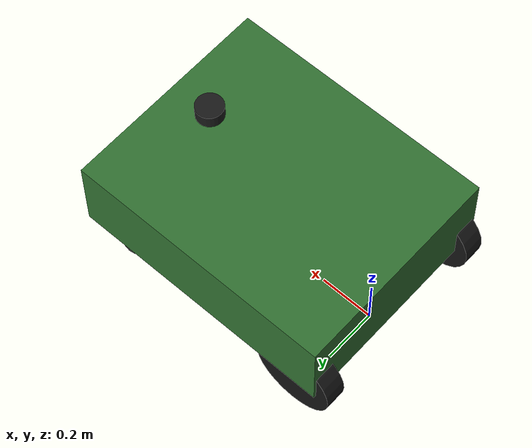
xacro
<?xml version="1.0"?>
<robot name="mower" xmlns:xacro="http://www.ros.org/wiki/xacro">

  <!-- ==================== parameters ==================== -->
  <xacro:property name="body_length"  value="1.00"/>
  <xacro:property name="body_width"   value="0.80"/>
  <xacro:property name="body_height"  value="0.30"/>
  <xacro:property name="body_mass"    value="55.0"/>

  <!-- How far the chassis extends behind the drive axle (motor/bumper
       housing). The rest of body_length extends forward of it. -->
  <xacro:property name="rear_overhang" value="0.10"/>
  <xacro:property name="body_xoff"     value="${body_length/2 - rear_overhang}"/>

  <xacro:property name="wheel_radius"     value="0.15"/>
  <xacro:property name="wheel_width"      value="0.08"/>
  <xacro:property name="wheel_separation" value="0.70"/>
  <xacro:property name="wheel_mass"       value="4.0"/>

  <!-- Front caster wheels sit at the two front corners, inset from the
       chassis edges, not on the centerline. -->
  <xacro:property name="caster_radius" value="0.075"/>
  <xacro:property name="caster_xoff"   value="${body_length - rear_overhang - 0.15}"/>
  <xacro:property name="caster_yoff"   value="${body_width/2 - 0.10}"/>
  <xacro:property name="caster_mass"   value="1.0"/>

  <!-- Cutting width drives the coverage planner's row spacing. -->
  <xacro:property name="cutting_width"    value="0.75"/>

  <!-- 0.30 m forward of the body's own center (not base_link's origin,
       which is now at the rear axle). -->
  <xacro:property name="lidar_xoff"   value="${body_xoff + 0.30}"/>
  <xacro:property name="lidar_height" value="0.40"/>
  <xacro:property name="lidar_radius" value="0.05"/>
  <xacro:property name="lidar_mass"   value="0.5"/>

  <xacro:property name="PI" value="3.14159265359"/>

  <xacro:arg name="use_lidar" default="true"/>

  <xacro:arg name="ground_truth_odometry" default="false"/>

  <!-- ==================== inertia macros ==================== -->
  <xacro:macro name="box_inertia" params="m x y z">
    <inertial>
      <mass value="${m}"/>
      <inertia ixx="${m*(y*y+z*z)/12}" ixy="0" ixz="0"
               iyy="${m*(x*x+z*z)/12}" iyz="0"
               izz="${m*(x*x+y*y)/12}"/>
    </inertial>
  </xacro:macro>

  <!-- Cylinder spun about its local z; the caller rotates the whole link. -->
  <xacro:macro name="cylinder_inertia" params="m r h rpy">
    <inertial>
      <origin xyz="0 0 0" rpy="${rpy}"/>
      <mass value="${m}"/>
      <inertia ixx="${m*(3*r*r+h*h)/12}" ixy="0" ixz="0"
               iyy="${m*(3*r*r+h*h)/12}" iyz="0"
               izz="${m*r*r/2}"/>
    </inertial>
  </xacro:macro>

  <xacro:macro name="sphere_inertia" params="m r">
    <inertial>
      <mass value="${m}"/>
      <inertia ixx="${2*m*r*r/5}" ixy="0" ixz="0"
               iyy="${2*m*r*r/5}" iyz="0"
               izz="${2*m*r*r/5}"/>
    </inertial>
  </xacro:macro>

  <!-- ==================== base ==================== -->
  <!-- Ground projection. Gazebo reports the model pose in this frame, so the
       ground truth TF node must use base_footprint as its base_frame. -->
  <link name="base_footprint"/>

  <joint name="base_joint" type="fixed">
    <parent link="base_footprint"/>
    <child  link="base_link"/>
    <origin xyz="0 0 ${wheel_radius}" rpy="0 0 0"/>
  </joint>

  <link name="base_link">
    <visual>
      <origin xyz="${body_xoff} 0 ${body_height/2}" rpy="0 0 0"/>
      <geometry>
        <box size="${body_length} ${body_width} ${body_height}"/>
      </geometry>
      <material name="mower_green">
        <color rgba="0.20 0.45 0.20 1.0"/>
      </material>
    </visual>
    <collision>
      <origin xyz="${body_xoff} 0 ${body_height/2}" rpy="0 0 0"/>
      <geometry>
        <box size="${body_length} ${body_width} ${body_height}"/>
      </geometry>
    </collision>
    <xacro:box_inertia m="${body_mass}" x="${body_length}"
                       y="${body_width}" z="${body_height}"/>
  </link>

  <!-- ==================== drive wheels ==================== -->
  <xacro:macro name="drive_wheel" params="prefix reflect">
    <link name="${prefix}_wheel">
      <visual>
        <origin xyz="0 0 0" rpy="${PI/2} 0 0"/>
        <geometry>
          <cylinder radius="${wheel_radius}" length="${wheel_width}"/>
        </geometry>
        <material name="wheel_black">
          <color rgba="0.08 0.08 0.08 1.0"/>
        </material>
      </visual>
      <collision>
        <origin xyz="0 0 0" rpy="${PI/2} 0 0"/>
        <geometry>
          <cylinder radius="${wheel_radius}" length="${wheel_width}"/>
        </geometry>
      </collision>
      <xacro:cylinder_inertia m="${wheel_mass}" r="${wheel_radius}"
                              h="${wheel_width}" rpy="${PI/2} 0 0"/>
    </link>

    <joint name="${prefix}_wheel_joint" type="continuous">
      <parent link="base_link"/>
      <child  link="${prefix}_wheel"/>
      <origin xyz="0 ${reflect*wheel_separation/2} 0" rpy="0 0 0"/>
      <axis xyz="0 1 0"/>
      <limit effort="100.0" velocity="20.0"/>
      <dynamics damping="0.1" friction="0.1"/>
    </joint>

    <gazebo reference="${prefix}_wheel">
      <mu1>1.0</mu1>
      <mu2>1.0</mu2>
      <kp>1000000.0</kp>
      <kd>1.0</kd>
      <material>Gazebo/Black</material>
    </gazebo>
  </xacro:macro>

  <xacro:drive_wheel prefix="left"  reflect="1"/>
  <xacro:drive_wheel prefix="right" reflect="-1"/>

  <!-- ==================== casters ==================== -->
  <xacro:macro name="caster" params="prefix xoff yoff">
    <link name="${prefix}_caster">
      <visual>
        <geometry><sphere radius="${caster_radius}"/></geometry>
        <material name="caster_grey">
          <color rgba="0.25 0.25 0.25 1.0"/>
        </material>
      </visual>
      <collision>
        <geometry><sphere radius="${caster_radius}"/></geometry>
      </collision>
      <xacro:sphere_inertia m="${caster_mass}" r="${caster_radius}"/>
    </link>

    <joint name="${prefix}_caster_joint" type="fixed">
      <parent link="base_link"/>
      <child  link="${prefix}_caster"/>
      <origin xyz="${xoff} ${yoff} ${-(wheel_radius-caster_radius)}" rpy="0 0 0"/>
    </joint>

    <gazebo reference="${prefix}_caster">
      <mu1>0.05</mu1>
      <mu2>0.05</mu2>
      <kp>1000000.0</kp>
      <kd>1.0</kd>
      <material>Gazebo/DarkGrey</material>
    </gazebo>
  </xacro:macro>

  <xacro:caster prefix="front_left"  xoff="${caster_xoff}" yoff="${caster_yoff}"/>
  <xacro:caster prefix="front_right" xoff="${caster_xoff}" yoff="${-caster_yoff}"/>

  <!-- ==================== lidar ==================== -->
  <!-- Mounted 0.55 m above ground, 0.10 m clear of the chassis top, so the
       horizontal scan plane never clips the robot's own body. -->
  <link name="base_scan">
    <visual>
      <geometry>
        <cylinder radius="${lidar_radius}" length="0.05"/>
      </geometry>
      <material name="lidar_dark">
        <color rgba="0.1 0.1 0.1 1.0"/>
      </material>
    </visual>
    <collision>
      <geometry>
        <cylinder radius="${lidar_radius}" length="0.05"/>
      </geometry>
    </collision>
    <xacro:cylinder_inertia m="${lidar_mass}" r="${lidar_radius}"
                            h="0.05" rpy="0 0 0"/>
  </link>

  <joint name="scan_joint" type="fixed">
    <parent link="base_link"/>
    <child  link="base_scan"/>
    <origin xyz="${lidar_xoff} 0 ${lidar_height}" rpy="0 0 0"/>
  </joint>

  <!-- ==================== gazebo ==================== -->
  <gazebo reference="base_link">
    <material>Gazebo/Green</material>
  </gazebo>

  <gazebo reference="base_scan">
    <material>Gazebo/Black</material>
    <xacro:if value="$(arg use_lidar)">
    <sensor name="lidar" type="ray">
      <pose>0 0 0 0 0 0</pose>
      <always_on>true</always_on>
      <visualize>false</visualize>
      <update_rate>10.0</update_rate>
      <ray>
        <scan>
          <horizontal>
            <samples>360</samples>
            <resolution>1.0</resolution>
            <min_angle>${-PI}</min_angle>
            <max_angle>${PI}</max_angle>
          </horizontal>
        </scan>
        <range>
          <min>0.20</min>
          <max>12.0</max>
          <resolution>0.015</resolution>
        </range>
        <noise>
          <type>gaussian</type>
          <mean>0.0</mean>
          <stddev>0.01</stddev>
        </noise>
      </ray>
      <plugin name="lidar_controller" filename="libgazebo_ros_ray_sensor.so">
        <ros>
          <remapping>~/out:=scan</remapping>
        </ros>
        <output_type>sensor_msgs/LaserScan</output_type>
        <frame_name>base_scan</frame_name>
      </plugin>
    </sensor>
    </xacro:if>
  </gazebo>

  <gazebo>
    <!-- Subscribes to /cmd_vel, which nav2's velocity_smoother publishes
         (navigation_launch.py remaps cmd_vel_smoothed -> cmd_vel), so the
         smoother stays in the loop. -->
    <plugin name="diff_drive" filename="libgazebo_ros_diff_drive.so">
      <ros>
        <namespace>/</namespace>
      </ros>
      <update_rate>50.0</update_rate>
      <left_joint>left_wheel_joint</left_joint>
      <right_joint>right_wheel_joint</right_joint>
      <wheel_separation>${wheel_separation}</wheel_separation>
      <wheel_diameter>${2*wheel_radius}</wheel_diameter>
      <max_wheel_torque>80.0</max_wheel_torque>
      <max_wheel_acceleration>3.0</max_wheel_acceleration>
      <command_topic>cmd_vel</command_topic>
      <publish_odom>$(arg ground_truth_odometry)</publish_odom>
      <publish_odom_tf>$(arg ground_truth_odometry)</publish_odom_tf>
      <publish_wheel_tf>false</publish_wheel_tf>
      <odometry_source>1</odometry_source>
      <odometry_topic>odom</odometry_topic>
      <odometry_frame>odom</odometry_frame>
      <robot_base_frame>base_footprint</robot_base_frame>
    </plugin>

    <!-- Wheel TFs come from robot_state_publisher via /joint_states rather
         than from the diff drive plugin, so only one node owns them. -->
    <plugin name="joint_states" filename="libgazebo_ros_joint_state_publisher.so">
      <ros>
        <namespace>/</namespace>
        <remapping>~/out:=joint_states</remapping>
      </ros>
      <update_rate>50.0</update_rate>
      <joint_name>left_wheel_joint</joint_name>
      <joint_name>right_wheel_joint</joint_name>
    </plugin>

    <plugin name="ground_truth_odom" filename="libgazebo_ros_p3d.so">
      <ros>
        <namespace>/</namespace>
        <remapping>odom:=ground_truth/odom</remapping>
      </ros>
      <update_rate>50.0</update_rate>
      <body_name>base_footprint</body_name>
      <frame_name>world</frame_name>
      <gaussian_noise>0.0</gaussian_noise>
    </plugin>
  </gazebo>

</robot>
